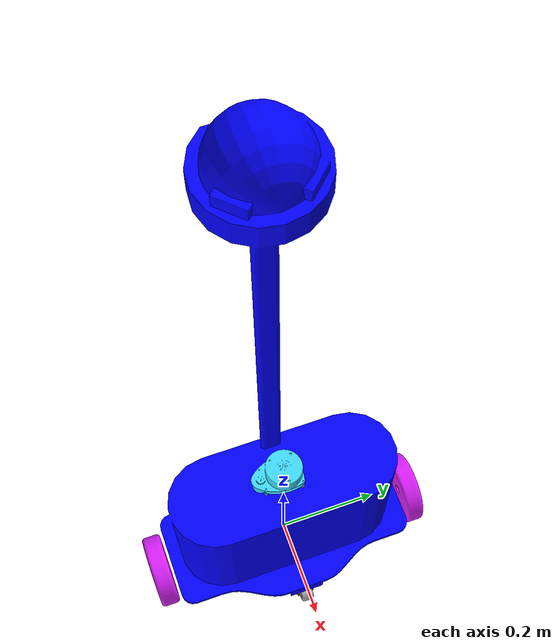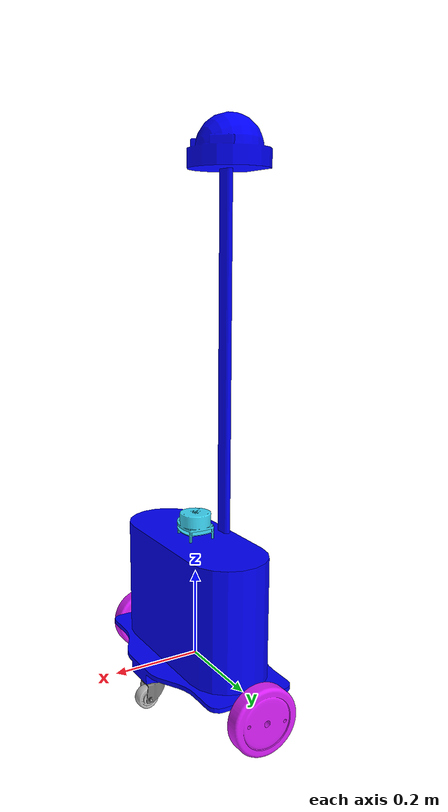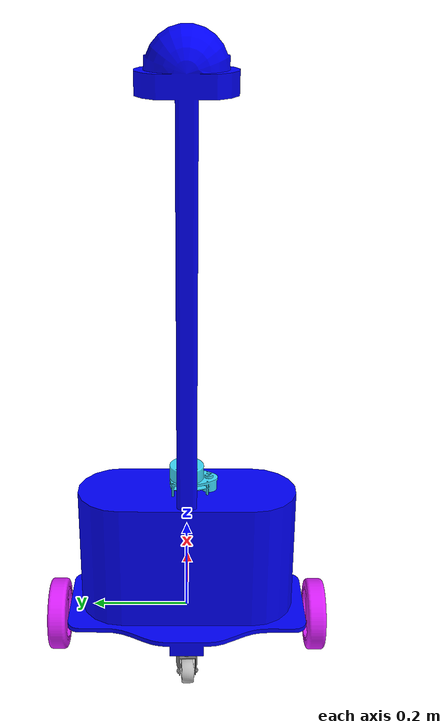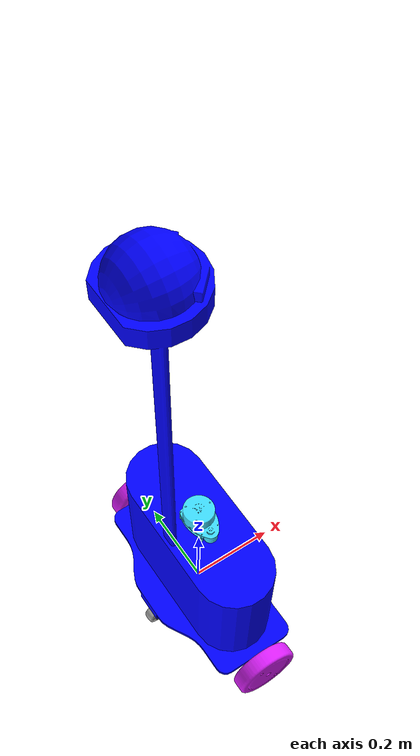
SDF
<sdf version='1.6'>
  <model name='AEP_Robot'>
    <plugin filename='ignition-gazebo-imu-system' name='ignition::gazebo::systems::Imu'/>
    <link name='base_footprint'>
      <inertial>
        <pose>-0.0021456169080571802 0.0062815696984499471 0.05 0 0 0</pose>
        <mass>17.236799999999999</mass>
        <inertia>
          <ixx>0.68051047690503075</ixx>
          <ixy>3.8335288472801932e-05</ixy>
          <ixz>0.040272502581654518</ixz>
          <iyy>0.60604033267438095</iyy>
          <iyz>0.0020909274938807169</iyz>
          <izz>0.15954483661093849</izz>
        </inertia>
      </inertial>
      <collision name='base_footprint_fixed_joint_lump__base_link_collision'>
        <pose>0 0 0.06 0 0 0</pose>
        <geometry>
          <box>
            <size>0.45 0.32 0.08</size>
          </box>
        </geometry>
      </collision>
      <collision name='base_footprint_fixed_joint_lump__imu_link_collision_1'>
        <pose>0 0 0.14999999999999999 0 0 0</pose>
        <geometry>
          <box>
            <size>0.02 0.02 0.01</size>
          </box>
        </geometry>
      </collision>
      <collision name='base_footprint_fixed_joint_lump__lidar_link_collision_2'>
        <pose>0 0.00042039343120083499 0.32565 0 0 0</pose>
        <geometry>
          <mesh>
            <scale>1 1 1</scale>
            <uri>model://robot_description/meshes/lidar_link.STL</uri>
          </mesh>
        </geometry>
      </collision>
      <visual name='base_footprint_fixed_joint_lump__base_link_visual'>
        <pose>0 0 0 0 0 0</pose>
        <geometry>
          <mesh>
            <scale>1 1 1</scale>
            <uri>model://robot_description/meshes/base_link.STL</uri>
          </mesh>
        </geometry>
        <material>
          <diffuse>0.0 0.0 1.0 1</diffuse>
          <ambient>0.0 0.0 1.0 1</ambient>
        </material>
      </visual>
      <visual name='base_footprint_fixed_joint_lump__imu_link_visual_1'>
        <pose>0 0 0.14999999999999999 0 0 0</pose>
        <geometry>
          <box>
            <size>0.02 0.02 0.01</size>
          </box>
        </geometry>
        <material>
          <diffuse>0 1 0 0.5</diffuse>
          <ambient>0 1 0 0.5</ambient>
        </material>
      </visual>
      <visual name='base_footprint_fixed_joint_lump__lidar_link_visual_2'>
        <pose>0 0.00042039343120083499 0.32565 0 0 0</pose>
        <geometry>
          <mesh>
            <scale>1 1 1</scale>
            <uri>model://robot_description/meshes/lidar_link.STL</uri>
          </mesh>
        </geometry>
        <material>
          <diffuse>0.25 0.875 1 1</diffuse>
          <ambient>0.25 0.875 1 1</ambient>
        </material>
      </visual>
      <sensor name='lidar' type='gpu_lidar'>
        <pose>0 0.00042039343120083499 0.32565 0 0 0</pose>
        <always_on>true</always_on>
        <update_rate>10</update_rate>
        <visualize>true</visualize>
        <topic>/scan</topic>
        <ray>
          <scan>
            <horizontal>
              <samples>360</samples>
              <resolution>1</resolution>
              <min_angle>-3.14159</min_angle>
              <max_angle>3.14159</max_angle>
            </horizontal>
          </scan>
          <range>
            <min>0.12</min>
            <max>12.0</max>
            <resolution>0.01</resolution>
          </range>
          <noise>
            <type>gaussian</type>
            <mean>0.0</mean>
            <stddev>0.01</stddev>
          </noise>
        </ray>
      </sensor>
      <sensor name='imu' type='imu'>
        <pose>0 0 0.14999999999999999 0 0 0</pose>
        <always_on>true</always_on>
        <update_rate>50</update_rate>
        <topic>/imu/data</topic>
        <imu>
          <angular_velocity>
            <x>
              <noise type='gaussian'>
                <mean>0.0</mean>
                <stddev>0.0002</stddev>
              </noise>
            </x>
            <y>
              <noise type='gaussian'>
                <mean>0.0</mean>
                <stddev>0.0002</stddev>
              </noise>
            </y>
            <z>
              <noise type='gaussian'>
                <mean>0.0</mean>
                <stddev>0.0002</stddev>
              </noise>
            </z>
          </angular_velocity>
          <linear_acceleration>
            <x>
              <noise type='gaussian'>
                <mean>0.0</mean>
                <stddev>0.0004</stddev>
              </noise>
            </x>
            <y>
              <noise type='gaussian'>
                <mean>0.0</mean>
                <stddev>0.0004</stddev>
              </noise>
            </y>
            <z>
              <noise type='gaussian'>
                <mean>0.0</mean>
                <stddev>0.0004</stddev>
              </noise>
            </z>
          </linear_acceleration>
        </imu>
      </sensor>
    </link>
    <joint name='back_castor_body_joint' type='revolute'>
      <pose relative_to='base_footprint'>-0.105 0 -0.041500000000000002 0 0 0</pose>
      <parent>base_footprint</parent>
      <child>back_castor_body_link</child>
      <axis>
        <xyz>0 0 1</xyz>
        <limit>
          <lower>-inf</lower>
          <upper>inf</upper>
        </limit>
        <dynamics>
          <spring_reference>0</spring_reference>
          <spring_stiffness>0</spring_stiffness>
          <damping>0.2</damping>
        </dynamics>
      </axis>
    </joint>
    <link name='back_castor_body_link'>
      <pose relative_to='back_castor_body_joint'>0 0 0 0 0 0</pose>
      <inertial>
        <pose>-0.0055142000000000004 -0.00031498000000000002 -0.0066169000000000002 0 0 0</pose>
        <mass>0.011291000000000001</mass>
        <inertia>
          <ixx>4.0602999999999999e-06</ixx>
          <ixy>1.3027999999999999e-08</ixy>
          <ixz>-8.6797000000000001e-07</ixz>
          <iyy>3.8333999999999996e-06</iyy>
          <iyz>-4.9618000000000001e-08</iyz>
          <izz>4.4634000000000003e-06</izz>
        </inertia>
      </inertial>
      <collision name='back_castor_body_link_collision'>
        <pose>0 0 0 0 0 0</pose>
        <geometry>
          <box>
            <size>0.06 0.06 0.04</size>
          </box>
        </geometry>
      </collision>
      <visual name='back_castor_body_link_visual'>
        <pose>0 0 0 0 0 0</pose>
        <geometry>
          <mesh>
            <scale>1 1 1</scale>
            <uri>model://robot_description/meshes/back_castor_body_link.STL</uri>
          </mesh>
        </geometry>
        <material>
          <diffuse>0.5 0.5 0.5 1</diffuse>
          <ambient>0.5 0.5 0.5 1</ambient>
        </material>
      </visual>
    </link>
    <joint name='back_castor_wheel_joint' type='revolute'>
      <pose relative_to='back_castor_body_link'>-0.024216000000000001 0.020653999999999999 -0.033000000000000002 0 0 0</pose>
      <parent>back_castor_body_link</parent>
      <child>back_castor_wheel_link</child>
      <axis>
        <xyz>0 1 0</xyz>
        <limit>
          <lower>-inf</lower>
          <upper>inf</upper>
        </limit>
        <dynamics>
          <spring_reference>0</spring_reference>
          <spring_stiffness>0</spring_stiffness>
          <damping>0.2</damping>
        </dynamics>
      </axis>
    </joint>
    <link name='back_castor_wheel_link'>
      <pose relative_to='back_castor_wheel_joint'>0 0 0 0 0 0</pose>
      <inertial>
        <pose>0.0012650000000000001 -0.021964000000000001 -2.6983999999999999e-06 0 0 0</pose>
        <mass>0.047259000000000002</mass>
        <inertia>
          <ixx>9.5208000000000004e-06</ixx>
          <ixy>-2.6579e-07</ixy>
          <ixz>-1.9877000000000001e-09</ixz>
          <iyy>1.4164e-05</iyy>
          <iyz>-1.1341e-10</iyz>
          <izz>9.4973999999999999e-06</izz>
        </inertia>
      </inertial>
      <collision name='back_castor_wheel_link_collision'>
        <pose>0 0 0 1.5708 0 0</pose>
        <geometry>
          <cylinder>
            <length>0.02</length>
            <radius>0.05</radius>
          </cylinder>
        </geometry>
        <surface>
          <friction>
            <ode>
              <mu>1.0</mu>
              <mu2>1.0</mu2>
            </ode>
          </friction>
          <contact>
            <ode>
              <kp>100000</kp>
              <kd>1</kd>
            </ode>
          </contact>
        </surface>
      </collision>
      <visual name='back_castor_wheel_link_visual'>
        <pose>0 0 0 0 0 0</pose>
        <geometry>
          <mesh>
            <scale>1 1 1</scale>
            <uri>model://robot_description/meshes/back_castor_wheel_link.STL</uri>
          </mesh>
        </geometry>
        <material>
          <diffuse>0.75000006 0.75000006 0.75000006 1</diffuse>
          <ambient>0.75000006 0.75000006 0.75000006 1</ambient>
        </material>
      </visual>
    </link>
    <joint name='front_castor_body_joint' type='revolute'>
      <pose relative_to='base_footprint'>0.105 0 -0.041500000000000002 0 0 0</pose>
      <parent>base_footprint</parent>
      <child>front_castor_body_link</child>
      <axis>
        <xyz>0 0 1</xyz>
        <limit>
          <lower>-inf</lower>
          <upper>inf</upper>
        </limit>
        <dynamics>
          <spring_reference>0</spring_reference>
          <spring_stiffness>0</spring_stiffness>
          <damping>0.2</damping>
        </dynamics>
      </axis>
    </joint>
    <link name='front_castor_body_link'>
      <pose relative_to='front_castor_body_joint'>0 0 0 0 0 0</pose>
      <inertial>
        <pose>0.0055132999999999996 0.00033058000000000002 -0.0066169000000000002 0 0 0</pose>
        <mass>0.011291000000000001</mass>
        <inertia>
          <ixx>4.0602999999999999e-06</ixx>
          <ixy>1.3669999999999999e-08</ixy>
          <ixz>8.6782e-07</ixz>
          <iyy>3.8334999999999998e-06</iyy>
          <iyz>5.2075000000000001e-08</iyz>
          <izz>4.4634000000000003e-06</izz>
        </inertia>
      </inertial>
      <collision name='front_castor_body_link_collision'>
        <pose>0 0 0 0 0 0</pose>
        <geometry>
          <box>
            <size>0.06 0.06 0.04</size>
          </box>
        </geometry>
      </collision>
      <visual name='front_castor_body_link_visual'>
        <pose>0 0 0 0 0 0</pose>
        <geometry>
          <mesh>
            <scale>1 1 1</scale>
            <uri>model://robot_description/meshes/front_castor_body_link.STL</uri>
          </mesh>
        </geometry>
        <material>
          <diffuse>0.5 0.5 0.5 1</diffuse>
          <ambient>0.5 0.5 0.5 1</ambient>
        </material>
      </visual>
    </link>
    <joint name='front_castor_wheel_joint' type='revolute'>
      <pose relative_to='front_castor_body_link'>0.021642999999999999 0.023335999999999999 -0.033000000000000002 0 0 0</pose>
      <parent>front_castor_body_link</parent>
      <child>front_castor_wheel_link</child>
      <axis>
        <xyz>0 1 0</xyz>
        <limit>
          <lower>-inf</lower>
          <upper>inf</upper>
        </limit>
        <dynamics>
          <spring_reference>0</spring_reference>
          <spring_stiffness>0</spring_stiffness>
          <damping>0.2</damping>
        </dynamics>
      </axis>
    </joint>
    <link name='front_castor_wheel_link'>
      <pose relative_to='front_castor_wheel_joint'>0 0 0 0 0 0</pose>
      <inertial>
        <pose>0.0013270000000000001 -0.02196 3.518e-06 0 0 0</pose>
        <mass>0.047259000000000002</mass>
        <inertia>
          <ixx>9.5220999999999999e-06</ixx>
          <ixy>-2.7894999999999999e-07</ixy>
          <ixz>2.5434000000000001e-09</ixz>
          <iyy>1.4161999999999999e-05</iyy>
          <iyz>1.5233999999999999e-10</iyz>
          <izz>9.4977000000000006e-06</izz>
        </inertia>
      </inertial>
      <collision name='front_castor_wheel_link_collision'>
        <pose>0 0 0 1.5708 0 0</pose>
        <geometry>
          <cylinder>
            <length>0.02</length>
            <radius>0.05</radius>
          </cylinder>
        </geometry>
        <surface>
          <friction>
            <ode>
              <mu>1.0</mu>
              <mu2>1.0</mu2>
            </ode>
          </friction>
          <contact>
            <ode>
              <kp>100000</kp>
              <kd>1</kd>
            </ode>
          </contact>
        </surface>
      </collision>
      <visual name='front_castor_wheel_link_visual'>
        <pose>0 0 0 0 0 0</pose>
        <geometry>
          <mesh>
            <scale>1 1 1</scale>
            <uri>model://robot_description/meshes/front_castor_wheel_link.STL</uri>
          </mesh>
        </geometry>
        <material>
          <diffuse>0.75000006 0.75000006 0.75000006 1</diffuse>
          <ambient>0.75000006 0.75000006 0.75000006 1</ambient>
        </material>
      </visual>
    </link>
    <joint name='left_wheel_joint' type='revolute'>
      <pose relative_to='base_footprint'>0 0.29485 -0.025000000000000001 0 0 0</pose>
      <parent>base_footprint</parent>
      <child>left_wheel_link</child>
      <axis>
        <xyz>0 1 0</xyz>
        <limit>
          <lower>-inf</lower>
          <upper>inf</upper>
        </limit>
        <dynamics>
          <spring_reference>0</spring_reference>
          <spring_stiffness>0</spring_stiffness>
          <damping>0.1</damping>
        </dynamics>
      </axis>
    </joint>
    <link name='left_wheel_link'>
      <pose relative_to='left_wheel_joint'>0 0 0 0 0 0</pose>
      <inertial>
        <pose>8.2109999999999999e-08 -0.017521999999999999 -4.1792999999999998e-07 0 0 0</pose>
        <mass>0.58299999999999996</mass>
        <inertia>
          <ixx>0.00092026</ixx>
          <ixy>2.1255000000000001e-10</ixy>
          <ixz>8.2653999999999999e-07</ixz>
          <iyy>0.0017198000000000001</iyy>
          <iyz>-1.099e-09</iyz>
          <izz>0.00091447000000000002</izz>
        </inertia>
      </inertial>
      <collision name='left_wheel_link_collision'>
        <pose>0 0 0 1.5708 0 0</pose>
        <geometry>
          <cylinder>
            <length>0.050000000000000003</length>
            <radius>0.10000000000000001</radius>
          </cylinder>
        </geometry>
        <surface>
          <friction>
            <ode>
              <mu>1.2</mu>
              <mu2>1.2</mu2>
            </ode>
          </friction>
          <contact>
            <ode>
              <kp>150000</kp>
              <kd>2</kd>
            </ode>
          </contact>
        </surface>
      </collision>
      <visual name='left_wheel_link_visual'>
        <pose>0 0 0 0 0 0</pose>
        <geometry>
          <mesh>
            <scale>1 1 1</scale>
            <uri>model://robot_description/meshes/left_wheel_link.STL</uri>
          </mesh>
        </geometry>
        <material>
          <diffuse>0.875 0.125 1 1</diffuse>
          <ambient>0.875 0.125 1 1</ambient>
        </material>
      </visual>
    </link>
    <joint name='right_wheel_joint' type='revolute'>
      <pose relative_to='base_footprint'>0 -0.29485 -0.025000000000000001 0 0 0</pose>
      <parent>base_footprint</parent>
      <child>right_wheel_link</child>
      <axis>
        <xyz>0 1 0</xyz>
        <limit>
          <lower>-inf</lower>
          <upper>inf</upper>
        </limit>
        <dynamics>
          <spring_reference>0</spring_reference>
          <spring_stiffness>0</spring_stiffness>
          <damping>0.1</damping>
        </dynamics>
      </axis>
    </joint>
    <link name='right_wheel_link'>
      <pose relative_to='right_wheel_joint'>0 0 0 0 0 0</pose>
      <inertial>
        <pose>3.8173999999999998e-07 0.017521999999999999 1.8832999999999999e-07 0 0 0</pose>
        <mass>0.58299999999999996</mass>
        <inertia>
          <ixx>0.00091578999999999999</ixx>
          <ixy>-1.3235e-09</ixy>
          <ixz>-2.5693000000000001e-06</ixz>
          <iyy>0.0017198000000000001</iyy>
          <iyz>-7.3676000000000005e-10</iyz>
          <izz>0.00091892999999999999</izz>
        </inertia>
      </inertial>
      <collision name='right_wheel_link_collision'>
        <pose>0 0 0 1.5708 0 0</pose>
        <geometry>
          <cylinder>
            <length>0.050000000000000003</length>
            <radius>0.10000000000000001</radius>
          </cylinder>
        </geometry>
        <surface>
          <friction>
            <ode>
              <mu>1.2</mu>
              <mu2>1.2</mu2>
            </ode>
          </friction>
          <contact>
            <ode>
              <kp>150000</kp>
              <kd>2</kd>
            </ode>
          </contact>
        </surface>
      </collision>
      <visual name='right_wheel_link_visual'>
        <pose>0 0 0 0 0 0</pose>
        <geometry>
          <mesh>
            <scale>1 1 1</scale>
            <uri>model://robot_description/meshes/right_wheel_link.STL</uri>
          </mesh>
        </geometry>
        <material>
          <diffuse>0.875 0.125 1 1</diffuse>
          <ambient>0.875 0.125 1 1</ambient>
        </material>
      </visual>
    </link>
    <plugin name='ignition::gazebo::systems::JointStatePublisher' filename='ignition-gazebo-joint-state-publisher-system'>
      <topic>/joint_states</topic>
      <joint_name>left_wheel_joint</joint_name>
      <joint_name>right_wheel_joint</joint_name>
      <joint_name>front_castor_body_joint</joint_name>
      <joint_name>front_castor_wheel_joint</joint_name>
      <joint_name>back_castor_body_joint</joint_name>
      <joint_name>back_castor_wheel_joint</joint_name>
    </plugin>
    <plugin name='ignition::gazebo::systems::DiffDrive' filename='ignition-gazebo-diff-drive-system'>
      <left_joint>left_wheel_joint</left_joint>
      <right_joint>right_wheel_joint</right_joint>
      <wheel_separation>0.5897</wheel_separation>
      <wheel_radius>0.1</wheel_radius>
      <odom_publish_frequency>50</odom_publish_frequency>
      <topic>/cmd_vel</topic>
      <odom_topic>/odom</odom_topic>
      <frame_id>odom</frame_id>
      <child_frame_id>base_footprint</child_frame_id>
      <max_linear_acceleration>0.3</max_linear_acceleration>
      <max_angular_acceleration>0.6</max_angular_acceleration>
      <max_linear_deceleration>0.3</max_linear_deceleration>
      <max_angular_deceleration>0.6</max_angular_deceleration>
    </plugin>
    <frame name='imu_joint' attached_to='base_link'>
      <pose>0 0 0.14999999999999999 0 0 0</pose>
    </frame>
    <frame name='imu_link' attached_to='imu_joint'>
      <pose>0 0 0 0 0 0</pose>
    </frame>
    <frame name='lidar_joint' attached_to='base_link'>
      <pose>0 0.00042039343120083499 0.32565 0 0 0</pose>
    </frame>
    <frame name='lidar_link' attached_to='lidar_joint'>
      <pose>0 0 0 0 0 0</pose>
    </frame>
    <frame name='base_footprint_joint' attached_to='base_footprint'>
      <pose>0 0 0 0 0 0</pose>
    </frame>
    <frame name='base_link' attached_to='base_footprint_joint'>
      <pose>0 0 0 0 0 0</pose>
    </frame>
  </model>
</sdf>
